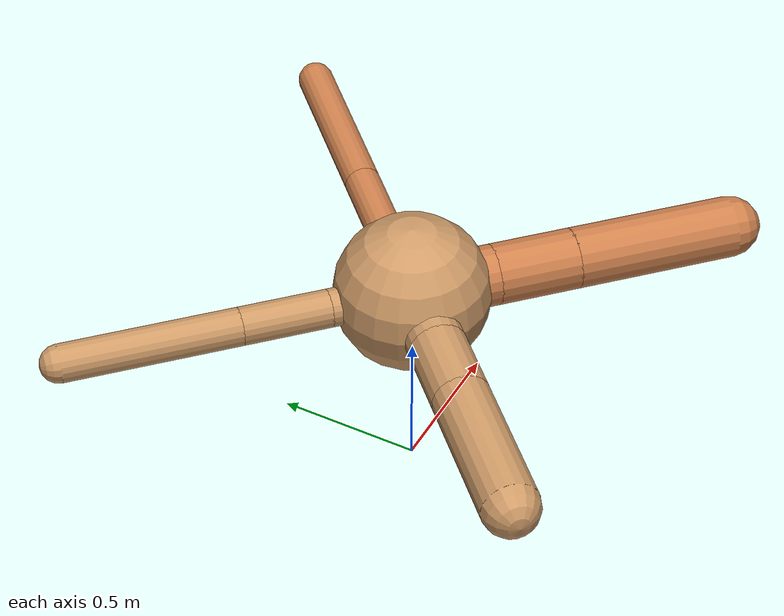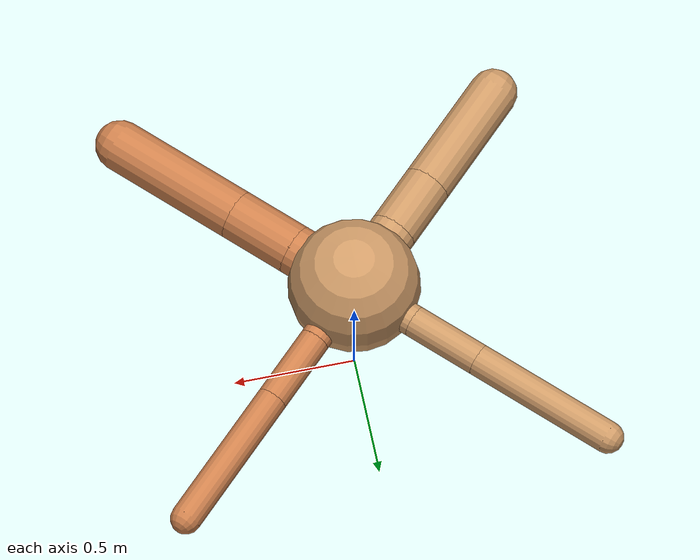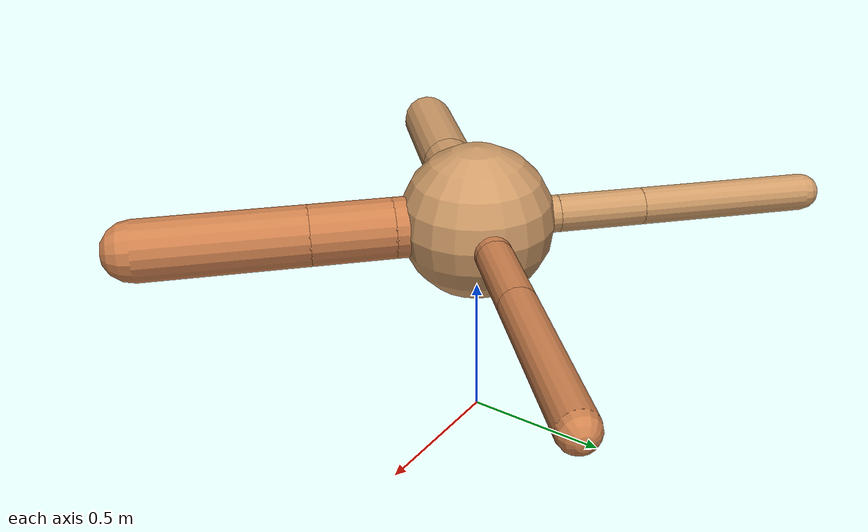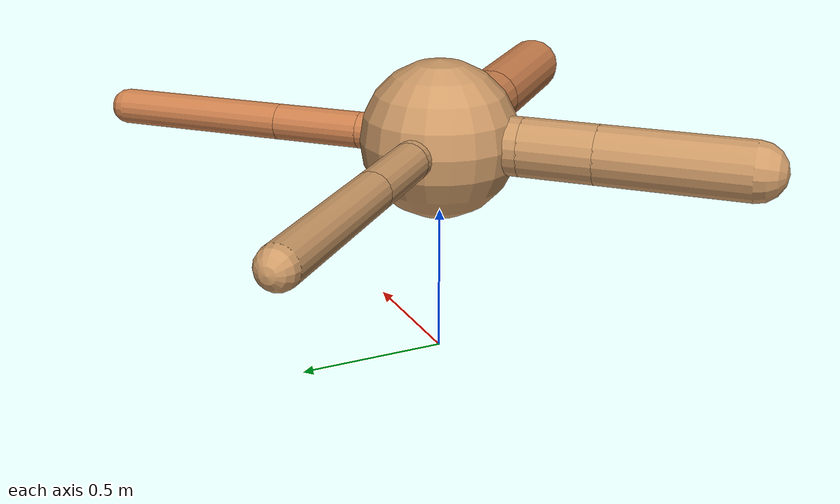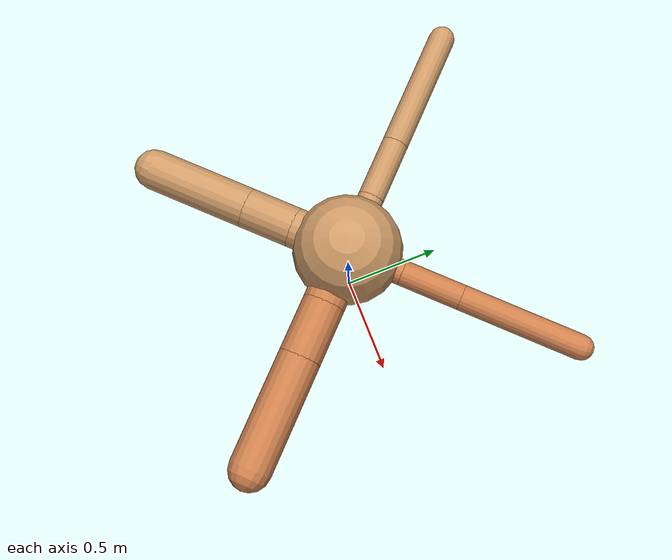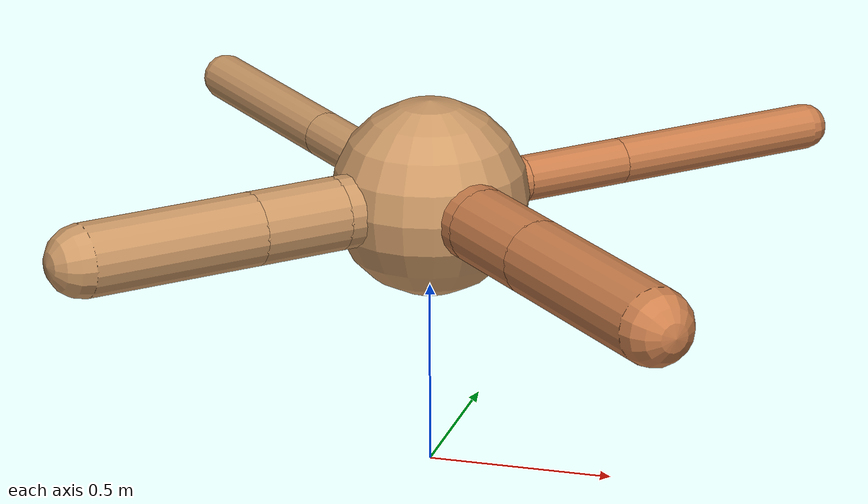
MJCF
<?xml version="1.0" ?>
<mujoco model="ant">

	<compiler angle="degree" coordinate="local" inertiafromgeom="true"/>

	<option integrator="RK4" timestep="0.01"/>

	<custom>

		<numeric data="0.0 0.0 0.55 1.0 0.0 0.0 0.0 0.0 1.0 0.0 -1.0 0.0 -1.0 0.0 1.0" name="init_qpos"/>

	</custom>

	<default>

		<joint armature="1" damping="1" limited="true"/>

		<geom conaffinity="0" condim="3" density="5.0" friction="1.5 0.1 0.1" margin="0.01" rgba="0.8 0.6 0.4 1"/>

	</default>

	<worldbody>

		<body name="torso" pos="0 0 0.75">

			<geom name="torso_geom" pos="0 0 0" size="0.2652429889710201" type="sphere"/>

			<!--joint armature="0" damping="0" limited="false" margin="0.01" name="root" pos="0 0 0" type="free"/-->

			<body name="front_left_leg" pos="0 0 0">

				<geom fromto="0 0 0 0.2 0.2 0" name="aux_1_geom" size="0.0618705223209914" type="capsule" rgba=".8 .5 .3 1"/>

				<body name="aux_1" pos="0.2 0.2 0">

					<joint axis="0 0 1" name="hip_1" pos="0.0 0.0 0.0" range="-40 40" type="hinge"/>

					<geom fromto="0 0 0 0.21245526120122876 0.21245526120122876 0" name="left_leg_geom" size="0.0618705223209914" type="capsule" rgba=".8 .5 .3 1"/>

					<body pos="0.21245526120122876 0.21245526120122876 0" name="front_left_foot">

						<joint axis="-1 1 0" name="ankle_1" pos="0.0 0.0 0.0" range="30 100" type="hinge"/>

						<geom fromto="0 0 0 0.4249105224024575 0.4249105224024575 0" name="left_ankle_geom" size="0.0618705223209914" type="capsule" rgba=".8 .5 .3 1"/>

					</body>

				</body>

			</body>

			<body name="front_right_leg" pos="0 0 0">

				<geom fromto="0 0 0 -0.2 0.2 0" name="aux_2_geom" size="0.06410914637142598" type="capsule"/>

				<body name="aux_2" pos="-0.2 0.2 0">

					<joint axis="0 0 1" name="hip_2" pos="0.0 0.0 0.0" range="-40 40" type="hinge"/>

					<geom fromto="0 0 0 -0.2121866235306178 0.2121866235306178 0" name="right_leg_geom" size="0.06410914637142598" type="capsule"/>

					<body pos="-0.2121866235306178 0.2121866235306178 0" name="front_right_foot">

						<joint axis="1 1 0" name="ankle_2" pos="0.0 0.0 0.0" range="-100 -30" type="hinge"/>

						<geom fromto="0 0 0 -0.4243732470612356 0.4243732470612356 0" name="right_ankle_geom" size="0.06410914637142598" type="capsule"/>

					</body>

				</body>

			</body>

			<body name="left_back_leg" pos="0 0 0">

				<geom fromto="0 0 0 -0.2 -0.2 0" name="aux_3_geom" size="0.09842006903022363" type="capsule"/>

				<body name="aux_3" pos="-0.2 -0.2 0">

					<joint axis="0 0 1" name="hip_3" pos="0.0 0.0 0.0" range="-40 40" type="hinge"/>

					<geom fromto="0 0 0 -0.17356088984384987 -0.17356088984384987 0" name="back_leg_geom" size="0.09842006903022363" type="capsule"/>

					<body pos="-0.17356088984384987 -0.17356088984384987 0" name="left_back_foot">

						<joint axis="-1 1 0" name="ankle_3" pos="0.0 0.0 0.0" range="-100 -30" type="hinge"/>

						<geom fromto="0 0 0 -0.34712177968769975 -0.34712177968769975 0" name="third_ankle_geom" size="0.09842006903022363" type="capsule"/>

					</body>

				</body>

			</body>

			<body name="right_back_leg" pos="0 0 0">

				<geom fromto="0 0 0 0.2 -0.2 0" name="aux_4_geom" size="0.10309349770850756" type="capsule" rgba=".8 .5 .3 1"/>

				<body name="aux_4" pos="0.2 -0.2 0">

					<joint axis="0 0 1" name="hip_4" pos="0.0 0.0 0.0" range="-40 40" type="hinge"/>

					<geom fromto="0 0 0 0.19734043105960747 -0.19734043105960747 0" name="rightback_leg_geom" size="0.10309349770850756" type="capsule" rgba=".8 .5 .3 1"/>

					<body pos="0.19734043105960747 -0.19734043105960747 0" name="right_back_foot">

						<joint axis="1 1 0" name="ankle_4" pos="0.0 0.0 0.0" range="30 100" type="hinge"/>

						<geom fromto="0 0 0 0.39468086211921494 -0.39468086211921494 0" name="fourth_ankle_geom" size="0.10309349770850756" type="capsule" rgba=".8 .5 .3 1"/>

					</body>

				</body>

			</body>

		</body>

	</worldbody>

	<actuator>

		<motor ctrllimited="true" ctrlrange="-1.0 1.0" joint="hip_4" gear="150"/>

		<motor ctrllimited="true" ctrlrange="-1.0 1.0" joint="ankle_4" gear="150"/>

		<motor ctrllimited="true" ctrlrange="-1.0 1.0" joint="hip_1" gear="150"/>

		<motor ctrllimited="true" ctrlrange="-1.0 1.0" joint="ankle_1" gear="150"/>

		<motor ctrllimited="true" ctrlrange="-1.0 1.0" joint="hip_2" gear="150"/>

		<motor ctrllimited="true" ctrlrange="-1.0 1.0" joint="ankle_2" gear="150"/>

		<motor ctrllimited="true" ctrlrange="-1.0 1.0" joint="hip_3" gear="150"/>

		<motor ctrllimited="true" ctrlrange="-1.0 1.0" joint="ankle_3" gear="150"/>

	</actuator>

</mujoco>
